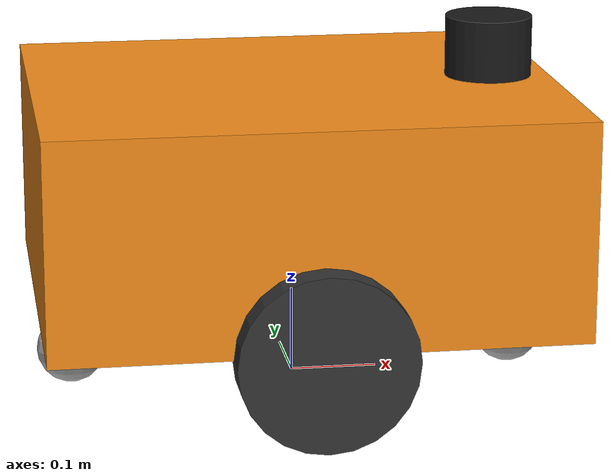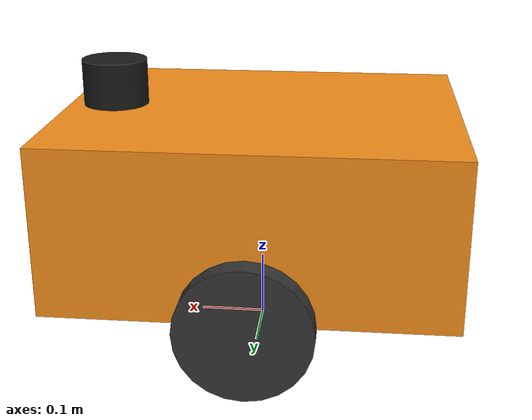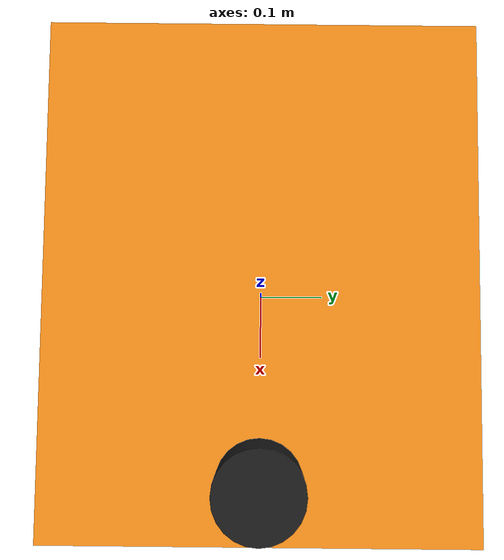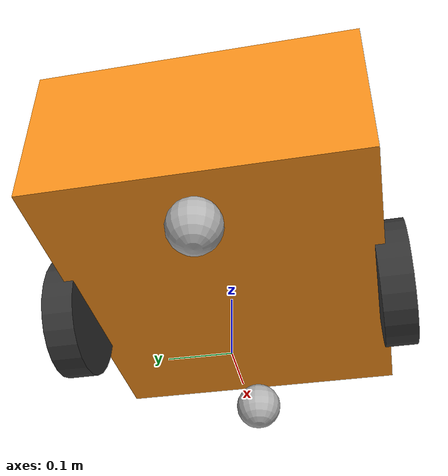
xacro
<?xml version="1.0"?>
<robot xmlns:xacro="http://www.ros.org/wiki/xacro" name="warehouse_amr">

  <!-- controllers_yaml: absolute path to ros2_controllers.yaml, passed in by sim.launch.py
       via: xacro.process_file(xacro_file, mappings={'controllers_yaml': path}) -->
  <xacro:arg name="controllers_yaml" default=""/>

  <!-- ==================== PARAMETERS ==================== -->
  <!-- All dimensions in metres, masses in kilograms.
       These are referenced as ${variable_name} throughout the file.
       Changing a value here automatically updates every formula that uses it. -->
  <xacro:property name="base_length"   value="0.60"/>  <!-- chassis front-to-back length -->
  <xacro:property name="base_width"    value="0.50"/>  <!-- chassis left-to-right width -->
  <xacro:property name="base_height"   value="0.25"/>  <!-- chassis top-to-bottom height -->
  <xacro:property name="base_mass"     value="25.0"/>  <!-- chassis mass (kg) — affects physics simulation -->
  <xacro:property name="wheel_radius"  value="0.10"/>  <!-- drive wheel radius; determines ground clearance -->
  <xacro:property name="wheel_width"   value="0.05"/>  <!-- drive wheel thickness -->
  <xacro:property name="wheel_mass"    value="1.5"/>   <!-- mass of each drive wheel -->
  <xacro:property name="wheel_sep"     value="0.52"/>  <!-- distance between wheel centres; MUST match ros2_controllers.yaml -->
  <xacro:property name="caster_radius" value="0.04"/>  <!-- passive caster ball radius -->
  <xacro:property name="caster_mass"   value="0.5"/>   <!-- mass of each caster -->
  <xacro:property name="lidar_mass"    value="0.3"/>   <!-- LiDAR unit mass -->
  <xacro:property name="imu_mass"      value="0.05"/>  <!-- IMU unit mass -->

  <!-- ==================== INERTIA MACROS ==================== -->

  <!-- Box inertia macro — used for the chassis (base_link).
       Formulas for a uniform solid box: Ixx=(1/12)m(y²+z²), Iyy=(1/12)m(x²+z²), Izz=(1/12)m(x²+y²) -->
  <xacro:macro name="box_inertia" params="m x y z">
    <inertial>
      <mass value="${m}"/>
      <inertia ixx="${(1.0/12.0)*m*(y*y+z*z)}" ixy="0.0" ixz="0.0"
               iyy="${(1.0/12.0)*m*(x*x+z*z)}" iyz="0.0"
               izz="${(1.0/12.0)*m*(x*x+y*y)}"/>
    </inertial>
  </xacro:macro>

  <!-- Cylinder inertia macro — used for the drive wheels.
       Formulas for a solid cylinder: Ixx=Iyy=(1/12)m(3r²+h²), Izz=(1/2)mr² -->
  <xacro:macro name="cylinder_inertia" params="m r h">
    <inertial>
      <mass value="${m}"/>
      <inertia ixx="${(1.0/12.0)*m*(3*r*r+h*h)}" ixy="0.0" ixz="0.0"
               iyy="${(1.0/12.0)*m*(3*r*r+h*h)}" iyz="0.0"
               izz="${(1.0/2.0)*m*r*r}"/>
    </inertial>
  </xacro:macro>

  <!-- Sphere inertia macro — used for the passive casters.
       Formula for a solid sphere: Ixx=Iyy=Izz=(2/5)mr² -->
  <xacro:macro name="sphere_inertia" params="m r">
    <inertial>
      <mass value="${m}"/>
      <inertia ixx="${(2.0/5.0)*m*r*r}" ixy="0.0" ixz="0.0"
               iyy="${(2.0/5.0)*m*r*r}" iyz="0.0"
               izz="${(2.0/5.0)*m*r*r}"/>
    </inertial>
  </xacro:macro>

  <!-- ==================== DRIVE WHEEL MACRO ==================== -->
  <xacro:macro name="drive_wheel" params="prefix reflect">
    <link name="${prefix}_wheel_link">
      <visual>
        <!-- rpy="${pi/2} 0 0" rotates the cylinder so its axis is along Y (horizontal) -->
        <origin xyz="0 0 0" rpy="${pi/2} 0 0"/>
        <geometry><cylinder radius="${wheel_radius}" length="${wheel_width}"/></geometry>
        <material name="dark_grey"><color rgba="0.2 0.2 0.2 1.0"/></material>
      </visual>
      <collision>
        <origin xyz="0 0 0" rpy="${pi/2} 0 0"/>
        <geometry><cylinder radius="${wheel_radius}" length="${wheel_width}"/></geometry>
      </collision>
      <xacro:cylinder_inertia m="${wheel_mass}" r="${wheel_radius}" h="${wheel_width}"/>
    </link>

    <!-- continuous joint = the wheel rotates freely with no angle limit -->
    <joint name="${prefix}_wheel_joint" type="continuous">
      <parent link="base_link"/>
      <child  link="${prefix}_wheel_link"/>
      <!-- reflect * wheel_sep/2: left wheel at +0.26 m, right wheel at -0.26 m in Y -->
      <origin xyz="0 ${reflect * wheel_sep/2} 0" rpy="0 0 0"/>
      <axis xyz="0 1 0"/>   <!-- wheel rotates about the Y axis -->
      <dynamics damping="0.1" friction="0.5"/>  <!-- small damping and friction for stable simulation -->
    </joint>

    <!-- Gazebo material and friction for this wheel link -->
    <!-- Professor's per-link material pattern -->
    <gazebo reference="${prefix}_wheel_link">
      <material>Gazebo/DarkGrey</material>
      <mu1>0.8</mu1>  <!-- friction coefficient in primary direction (along wheel rolling axis) -->
      <mu2>0.8</mu2>  <!-- friction coefficient in secondary direction (lateral) -->
    </gazebo>
  </xacro:macro>

  <!-- ==================== CASTER MACRO ==================== -->
  <xacro:macro name="caster" params="prefix x_pos">
    <link name="${prefix}_caster_link">
      <visual>
        <geometry><sphere radius="${caster_radius}"/></geometry>
        <material name="light_grey"><color rgba="0.7 0.7 0.7 1.0"/></material>
      </visual>
      <collision>
        <geometry><sphere radius="${caster_radius}"/></geometry>
      </collision>
      <xacro:sphere_inertia m="${caster_mass}" r="${caster_radius}"/>
    </link>

    <!-- fixed joint — caster does not have a motor; physics engine simulates its rolling -->
    <joint name="${prefix}_caster_joint" type="fixed">
      <parent link="base_link"/>
      <child  link="${prefix}_caster_link"/>
      <!-- z = -wheel_radius + caster_radius: places the caster sphere touching the floor
           (same ground plane as the drive wheels) -->
      <origin xyz="${x_pos} 0 ${-wheel_radius + caster_radius}" rpy="0 0 0"/>
    </joint>

    <!-- Low friction so casters slide freely rather than rolling with resistance -->
    <gazebo reference="${prefix}_caster_link">
      <material>Gazebo/Grey</material>
      <mu1>0.01</mu1>  <!-- near-zero friction for free sliding -->
      <mu2>0.01</mu2>
    </gazebo>
  </xacro:macro>

  <!-- ==================== BASE ==================== -->
  <link name="base_footprint"/>  <!-- 2-D ground projection; no geometry needed -->

  <!-- Fixed joint lifts base_link by wheel_radius (0.10 m) above the floor -->
  <joint name="base_footprint_joint" type="fixed">
    <parent link="base_footprint"/>
    <child  link="base_link"/>
    <origin xyz="0 0 ${wheel_radius}" rpy="0 0 0"/>  <!-- z = wheel_radius: chassis sits on top of wheels -->
  </joint>

  <link name="base_link">
    <visual>
      <!-- origin z = base_height/2: visual is centred at mid-height of the chassis -->
      <origin xyz="0 0 ${base_height/2}" rpy="0 0 0"/>
      <geometry><box size="${base_length} ${base_width} ${base_height}"/></geometry>
      <material name="orange"><color rgba="0.95 0.55 0.1 1.0"/></material>  <!-- warehouse AMR orange -->
    </visual>
    <collision>
      <origin xyz="0 0 ${base_height/2}" rpy="0 0 0"/>
      <geometry><box size="${base_length} ${base_width} ${base_height}"/></geometry>
    </collision>
    <xacro:box_inertia m="${base_mass}" x="${base_length}" y="${base_width}" z="${base_height}"/>
  </link>

  <gazebo reference="base_link">
    <material>Gazebo/Orange</material>  <!-- Gazebo visual colour (overrides URDF material in Gazebo) -->
  </gazebo>

  <!-- Instantiate drive wheels using the macro (creates left_wheel and right_wheel links + joints) -->
  <xacro:drive_wheel prefix="left"  reflect="1"/>   <!-- left wheel: +Y side of robot -->
  <xacro:drive_wheel prefix="right" reflect="-1"/>  <!-- right wheel: -Y side of robot -->

  <!-- Instantiate passive casters (front and rear) using the macro -->
  <xacro:caster prefix="front" x_pos="${base_length/2  - caster_radius}"/>  <!-- front edge -->
  <xacro:caster prefix="rear"  x_pos="${-base_length/2 + caster_radius}"/>  <!-- rear edge -->

  <!-- ==================== LIDAR ==================== -->
  <link name="lidar_link">
    <visual>
      <geometry><cylinder radius="0.05" length="0.07"/></geometry>  <!-- small cylinder = LiDAR housing -->
      <material name="black"><color rgba="0.1 0.1 0.1 1.0"/></material>
    </visual>
    <collision>
      <geometry><cylinder radius="0.05" length="0.07"/></geometry>
    </collision>
    <inertial>
      <mass value="${lidar_mass}"/>
      <inertia ixx="0.0001" ixy="0" ixz="0" iyy="0.0001" iyz="0" izz="0.0001"/>  <!-- tiny inertia for light sensor -->
    </inertial>
  </link>

  <!-- Fixed joint: LiDAR is rigidly mounted (does not rotate independently) -->
  <joint name="lidar_joint" type="fixed">
    <parent link="base_link"/>
    <child  link="lidar_link"/>
    <!-- Mounted at the forward top of chassis:
         x = base_length/2 - 0.07 (near front edge)
         z = base_height + 0.035  (above the chassis top surface) -->
    <origin xyz="${base_length/2 - 0.07} 0 ${base_height + 0.035}" rpy="0 0 0"/>
  </joint>

  <gazebo reference="lidar_link">
    <material>Gazebo/Black</material>
    <!-- LiDAR sensor plugin — embedded directly like professor's camera sensor.
         This is a Gazebo sensor, not a ROS node; the gz_ros_bridge will forward
         its output to the /scan ROS topic. -->
    <sensor name="lidar" type="gpu_lidar">
      <update_rate>10</update_rate>          <!-- 10 Hz = 10 full 360° scans per second -->
      <topic>/scan</topic>                   <!-- Gazebo internal topic (bridged to ROS by gz_ros_bridge) -->
      <gz_frame_id>lidar_link</gz_frame_id>  <!-- TF frame the scan is referenced to -->
      <lidar>
        <scan>
          <horizontal>
            <samples>720</samples>           <!-- 720 rays per scan = 0.5° angular resolution -->
            <resolution>1</resolution>
            <min_angle>-3.14159</min_angle>  <!-- sweep starts at -180° -->
            <max_angle>3.14159</max_angle>   <!-- sweep ends at +180° (full 360° coverage) -->
          </horizontal>
        </scan>
        <range>
          <min>0.10</min>     <!-- ignore returns closer than 10 cm (prevents self-detections) -->
          <max>12.0</max>     <!-- maximum detection range: 12 metres -->
          <resolution>0.01</resolution>  <!-- distance resolution: 1 cm -->
        </range>
        <!-- Small Gaussian noise to simulate real-world LiDAR measurement uncertainty -->
        <noise type="gaussian"><mean>0.0</mean><stddev>0.01</stddev></noise>
      </lidar>
      <alwaysOn>true</alwaysOn>    <!-- keep the sensor running even when paused -->
      <visualize>false</visualize> <!-- don't draw laser rays in Gazebo GUI (improves performance) -->
    </sensor>
  </gazebo>

  <!-- ==================== IMU ==================== -->
  <link name="imu_link">
    <inertial>
      <mass value="${imu_mass}"/>
      <inertia ixx="1e-6" ixy="0" ixz="0" iyy="1e-6" iyz="0" izz="1e-6"/>  <!-- negligible inertia -->
    </inertial>
    <!-- No visual or collision: the IMU is treated as a massless coordinate frame -->
  </link>

  <!-- Fixed joint: IMU is rigidly attached at chassis mid-height -->
  <joint name="imu_joint" type="fixed">
    <parent link="base_link"/>
    <child  link="imu_link"/>
    <!-- z = base_height/2: geometric centre of the chassis (0.125 m above base_link origin) -->
    <origin xyz="0 0 ${base_height/2}" rpy="0 0 0"/>
  </joint>

  <gazebo reference="imu_link">
    <!-- IMU sensor plugin — embedded directly, same as professor's camera sensor pattern.
         Output is bridged to /imu/data_raw by gz_ros_bridge. -->
    <sensor name="imu_sensor" type="imu">
      <update_rate>100</update_rate>            <!-- 100 Hz = high-frequency orientation data -->
      <topic>/imu/data_raw</topic>              <!-- Gazebo internal topic -->
      <gz_frame_id>imu_link</gz_frame_id>       <!-- TF frame for the IMU measurements -->
      <imu>
        <!-- Gaussian noise on each angular velocity axis (gyroscope noise model) -->
        <angular_velocity>
          <x><noise type="gaussian"><mean>0</mean><stddev>0.009</stddev></noise></x>  <!-- 0.009 rad/s noise -->
          <y><noise type="gaussian"><mean>0</mean><stddev>0.009</stddev></noise></y>
          <z><noise type="gaussian"><mean>0</mean><stddev>0.009</stddev></noise></z>
        </angular_velocity>
        <!-- Gaussian noise on each linear acceleration axis (accelerometer noise model) -->
        <linear_acceleration>
          <x><noise type="gaussian"><mean>0</mean><stddev>0.021</stddev></noise></x>  <!-- 0.021 m/s² noise -->
          <y><noise type="gaussian"><mean>0</mean><stddev>0.021</stddev></noise></y>
          <z><noise type="gaussian"><mean>0</mean><stddev>0.021</stddev></noise></z>
        </linear_acceleration>
      </imu>
      <alwaysOn>true</alwaysOn>
    </sensor>
  </gazebo>

  <!-- ==================== ros2_control ==================== -->
  <ros2_control name="warehouse_amr_hardware" type="system">
    <hardware>
      <plugin>gz_ros2_control/GazeboSimSystem</plugin>  <!-- Gazebo as the hardware backend -->
    </hardware>
    <joint name="left_wheel_joint">
      <command_interface name="velocity">  <!-- diff_drive_controller sends wheel speed here -->
        <param name="min">-10</param>      <!-- minimum velocity: -10 rad/s -->
        <param name="max">10</param>       <!-- maximum velocity: +10 rad/s -->
      </command_interface>
      <state_interface name="position"/>  <!-- read accumulated wheel angle from encoder -->
      <state_interface name="velocity"/>  <!-- read current wheel angular velocity from encoder -->
    </joint>
    <joint name="right_wheel_joint">
      <command_interface name="velocity">
        <param name="min">-10</param>
        <param name="max">10</param>
      </command_interface>
      <state_interface name="position"/>
      <state_interface name="velocity"/>
    </joint>
  </ros2_control>

  <!-- ==================== GZ ros2_control PLUGIN ==================== -->
  <gazebo>
    <plugin filename="gz_ros2_control-system"
            name="gz_ros2_control::GazeboSimROS2ControlPlugin">
      <parameters>$(arg controllers_yaml)</parameters>  <!-- absolute path to ros2_controllers.yaml -->
      <ros>
        <!-- remap so the plugin reads the robot description from the standard ROS topic -->
        <remapping>~/robot_description:=/robot_description</remapping>
      </ros>
    </plugin>
  </gazebo>

  <!-- ==================== JOINT STATE PUBLISHER PLUGIN ==================== -->
  <gazebo>
    <plugin filename="gz-sim-joint-state-publisher-system"
            name="gz::sim::systems::JointStatePublisher">
      <topic>joint_states</topic>  <!-- publishes on /joint_states -->
    </plugin>
  </gazebo>

</robot>
